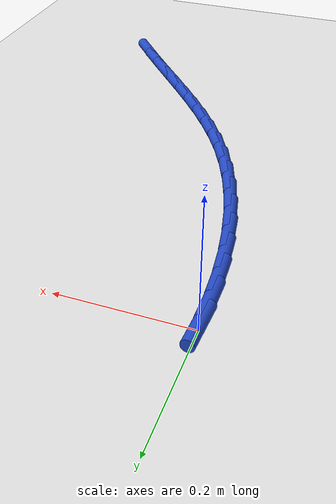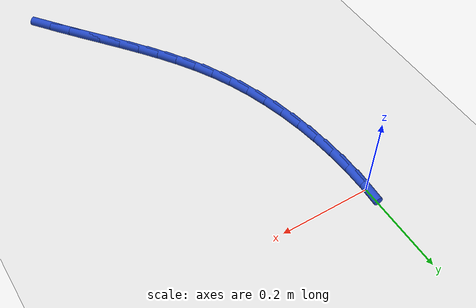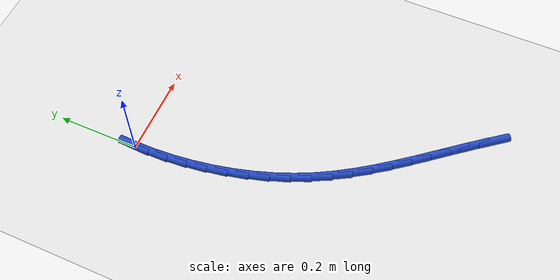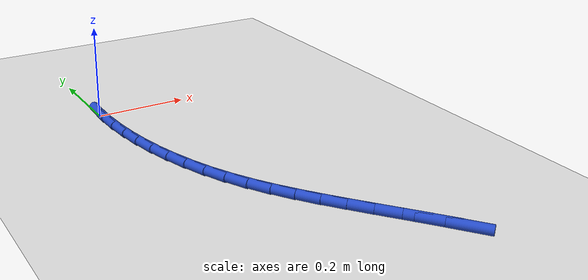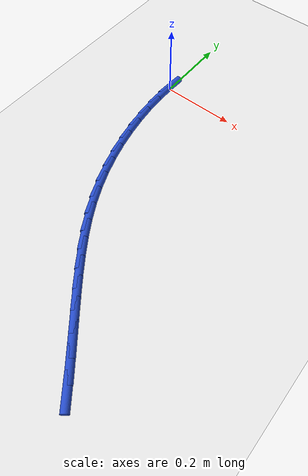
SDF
<sdf version="1.6">
 <world name="default">
  <model name="ground_plane">
   <static>1</static>
   <link name="link">
    <collision name="collision">
     <geometry><plane><normal>0 0 1</normal><size>100 100</size></plane></geometry>
     <surface><friction><ode><mu>100</mu><mu2>50</mu2></ode></friction></surface>
    </collision>
    <visual name="visual">
     <cast_shadows>0</cast_shadows>
     <geometry><plane><normal>0 0 1</normal><size>100 100</size></plane></geometry>
     <material>
      <script><uri>file://media/materials/scripts/gazebo.material</uri><name>Gazebo/WhiteGlow</name></script>
     </material>
    </visual>
   </link>
  </model>
  <model name="line">
   <link name="link_0">
    <pose>2.949029909160572e-17 -9.71445146547012e-17 0.01 0 1.57 1.5242293871294126</pose>
    <collision name="collision">
     <geometry><cylinder><radius>0.01</radius><length>0.08</length></cylinder></geometry>
    </collision>
    <visual name="visual">
     <material>
      <script><name>Gazebo/Blue</name><uri>file://media/materials/scripts/gazebo.material</uri></script>
     </material>
     <geometry><cylinder><radius>0.01</radius><length>0.08</length></cylinder></geometry>
    </visual>
   </link>
   <link name="link_132">
    <pose>0.35348030027188404 -0.7720656170091094 0.01 0 1.57 -0.9049125683342257</pose>
    <collision name="collision">
     <geometry><cylinder><radius>0.01</radius><length>0.08</length></cylinder></geometry>
    </collision>
    <visual name="visual">
     <material>
      <script><name>Gazebo/Blue</name><uri>file://media/materials/scripts/gazebo.material</uri></script>
     </material>
     <geometry><cylinder><radius>0.01</radius><length>0.08</length></cylinder></geometry>
    </visual>
   </link>
   <link name="link_133">
    <pose>0.3215983702352107 -0.7314814747076781 0.01 0 1.57 -0.8906312998005128</pose>
    <collision name="collision">
     <geometry><cylinder><radius>0.01</radius><length>0.08</length></cylinder></geometry>
    </collision>
    <visual name="visual">
     <material>
      <script><name>Gazebo/Blue</name><uri>file://media/materials/scripts/gazebo.material</uri></script>
     </material>
     <geometry><cylinder><radius>0.01</radius><length>0.08</length></cylinder></geometry>
    </visual>
   </link>
   <link name="link_134">
    <pose>0.28980930812730865 -0.6921840188591888 0.01 0 1.57 -0.8842956054414715</pose>
    <collision name="collision">
     <geometry><cylinder><radius>0.01</radius><length>0.08</length></cylinder></geometry>
    </collision>
    <visual name="visual">
     <material>
      <script><name>Gazebo/Blue</name><uri>file://media/materials/scripts/gazebo.material</uri></script>
     </material>
     <geometry><cylinder><radius>0.01</radius><length>0.08</length></cylinder></geometry>
    </visual>
   </link>
   <link name="link_135">
    <pose>0.25838447333710296 -0.6538362688484379 0.01 0 1.57 -0.8875377216220153</pose>
    <collision name="collision">
     <geometry><cylinder><radius>0.01</radius><length>0.08</length></cylinder></geometry>
    </collision>
    <visual name="visual">
     <material>
      <script><name>Gazebo/Blue</name><uri>file://media/materials/scripts/gazebo.material</uri></script>
     </material>
     <geometry><cylinder><radius>0.01</radius><length>0.08</length></cylinder></geometry>
    </visual>
   </link>
   <link name="link_136">
    <pose>0.22761968680229025 -0.6160447154731453 0.01 0 1.57 -0.9008405554920191</pose>
    <collision name="collision">
     <geometry><cylinder><radius>0.01</radius><length>0.08</length></cylinder></geometry>
    </collision>
    <visual name="visual">
     <material>
      <script><name>Gazebo/Blue</name><uri>file://media/materials/scripts/gazebo.material</uri></script>
     </material>
     <geometry><cylinder><radius>0.01</radius><length>0.08</length></cylinder></geometry>
    </visual>
   </link>
   <link name="link_137">
    <pose>0.19781076946056908 -0.5784158495310324 0.01 0 1.57 -0.9245545368926871</pose>
    <collision name="collision">
     <geometry><cylinder><radius>0.01</radius><length>0.08</length></cylinder></geometry>
    </collision>
    <visual name="visual">
     <material>
      <script><name>Gazebo/Blue</name><uri>file://media/materials/scripts/gazebo.material</uri></script>
     </material>
     <geometry><cylinder><radius>0.01</radius><length>0.08</length></cylinder></geometry>
    </visual>
   </link>
   <link name="link_138">
    <pose>0.16925354224963765 -0.5405561618198207 0.01 0 1.57 -0.9588349204207208</pose>
    <collision name="collision">
     <geometry><cylinder><radius>0.01</radius><length>0.08</length></cylinder></geometry>
    </collision>
    <visual name="visual">
     <material>
      <script><name>Gazebo/Blue</name><uri>file://media/materials/scripts/gazebo.material</uri></script>
     </material>
     <geometry><cylinder><radius>0.01</radius><length>0.08</length></cylinder></geometry>
    </visual>
   </link>
   <link name="link_139">
    <pose>0.142243826107193 -0.5020721431372303 0.01 0 1.57 -1.003547670598826</pose>
    <collision name="collision">
     <geometry><cylinder><radius>0.01</radius><length>0.08</length></cylinder></geometry>
    </collision>
    <visual name="visual">
     <material>
      <script><name>Gazebo/Blue</name><uri>file://media/materials/scripts/gazebo.material</uri></script>
     </material>
     <geometry><cylinder><radius>0.01</radius><length>0.08</length></cylinder></geometry>
    </visual>
   </link>
   <link name="link_140">
    <pose>0.11707744197093385 -0.4625702842809833 0.01 0 1.57 -1.0581552874732427</pose>
    <collision name="collision">
     <geometry><cylinder><radius>0.01</radius><length>0.08</length></cylinder></geometry>
    </collision>
    <visual name="visual">
     <material>
      <script><name>Gazebo/Blue</name><uri>file://media/materials/scripts/gazebo.material</uri></script>
     </material>
     <geometry><cylinder><radius>0.01</radius><length>0.08</length></cylinder></geometry>
    </visual>
   </link>
   <link name="link_141">
    <pose>0.09405021077855731 -0.4216570760487994 0.01 0 1.57 -1.1210733869360947</pose>
    <collision name="collision">
     <geometry><cylinder><radius>0.01</radius><length>0.08</length></cylinder></geometry>
    </collision>
    <visual name="visual">
     <material>
      <script><name>Gazebo/Blue</name><uri>file://media/materials/scripts/gazebo.material</uri></script>
     </material>
     <geometry><cylinder><radius>0.01</radius><length>0.08</length></cylinder></geometry>
    </visual>
   </link>
   <link name="link_142">
    <pose>0.07344469055638614 -0.3789702143133957 0.01 0 1.57 -1.1845652728330431</pose>
    <collision name="collision">
     <geometry><cylinder><radius>0.01</radius><length>0.08</length></cylinder></geometry>
    </collision>
    <visual name="visual">
     <material>
      <script><name>Gazebo/Blue</name><uri>file://media/materials/scripts/gazebo.material</uri></script>
     </material>
     <geometry><cylinder><radius>0.01</radius><length>0.08</length></cylinder></geometry>
    </visual>
   </link>
   <link name="link_143">
    <pose>0.055376729754543344 -0.3345396304590202 0.01 0 1.57 -1.2444196453967034</pose>
    <collision name="collision">
     <geometry><cylinder><radius>0.01</radius><length>0.08</length></cylinder></geometry>
    </collision>
    <visual name="visual">
     <material>
      <script><name>Gazebo/Blue</name><uri>file://media/materials/scripts/gazebo.material</uri></script>
     </material>
     <geometry><cylinder><radius>0.01</radius><length>0.08</length></cylinder></geometry>
    </visual>
   </link>
   <link name="link_144">
    <pose>0.03984835809157705 -0.28866304941494625 0.01 0 1.57 -1.3012729974863049</pose>
    <collision name="collision">
     <geometry><cylinder><radius>0.01</radius><length>0.08</length></cylinder></geometry>
    </collision>
    <visual name="visual">
     <material>
      <script><name>Gazebo/Blue</name><uri>file://media/materials/scripts/gazebo.material</uri></script>
     </material>
     <geometry><cylinder><radius>0.01</radius><length>0.08</length></cylinder></geometry>
    </visual>
   </link>
   <link name="link_145">
    <pose>0.026859405924091497 -0.24164337078533882 0.01 0 1.57 -1.3558303989350462</pose>
    <collision name="collision">
     <geometry><cylinder><radius>0.01</radius><length>0.08</length></cylinder></geometry>
    </collision>
    <visual name="visual">
     <material>
      <script><name>Gazebo/Blue</name><uri>file://media/materials/scripts/gazebo.material</uri></script>
     </material>
     <geometry><cylinder><radius>0.01</radius><length>0.08</length></cylinder></geometry>
    </visual>
   </link>
   <link name="link_146">
    <pose>0.01640970360868994 -0.19378349417435964 0.01 0 1.57 -1.4087769122127256</pose>
    <collision name="collision">
     <geometry><cylinder><radius>0.01</radius><length>0.08</length></cylinder></geometry>
    </collision>
    <visual name="visual">
     <material>
      <script><name>Gazebo/Blue</name><uri>file://media/materials/scripts/gazebo.material</uri></script>
     </material>
     <geometry><cylinder><radius>0.01</radius><length>0.08</length></cylinder></geometry>
    </visual>
   </link>
   <link name="link_147">
    <pose>0.00849908150197632 -0.14538631918617267 0.01 0 1.57 -1.4607850057535392</pose>
    <collision name="collision">
     <geometry><cylinder><radius>0.01</radius><length>0.08</length></cylinder></geometry>
    </collision>
    <visual name="visual">
     <material>
      <script><name>Gazebo/Blue</name><uri>file://media/materials/scripts/gazebo.material</uri></script>
     </material>
     <geometry><cylinder><radius>0.01</radius><length>0.08</length></cylinder></geometry>
    </visual>
   </link>
   <link name="link_148">
    <pose>0.0031273699605544082 -0.09675474542494214 0.01 0 1.57 -1.5125264647677346</pose>
    <collision name="collision">
     <geometry><cylinder><radius>0.01</radius><length>0.08</length></cylinder></geometry>
    </collision>
    <visual name="visual">
     <material>
      <script><name>Gazebo/Blue</name><uri>file://media/materials/scripts/gazebo.material</uri></script>
     </material>
     <geometry><cylinder><radius>0.01</radius><length>0.08</length></cylinder></geometry>
    </visual>
   </link>
   <link name="link_149">
    <pose>0.00029439934102770855 -0.04819167249482963 0.01 0 1.57 -1.5646874772023789</pose>
    <collision name="collision">
     <geometry><cylinder><radius>0.01</radius><length>0.08</length></cylinder></geometry>
    </collision>
    <visual name="visual">
     <material>
      <script><name>Gazebo/Blue</name><uri>file://media/materials/scripts/gazebo.material</uri></script>
     </material>
     <geometry><cylinder><radius>0.01</radius><length>0.08</length></cylinder></geometry>
    </visual>
   </link>
  </model>
 </world>
</sdf>
